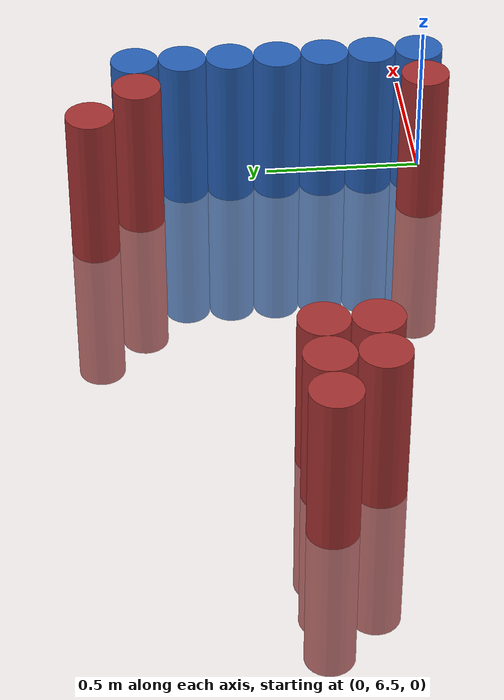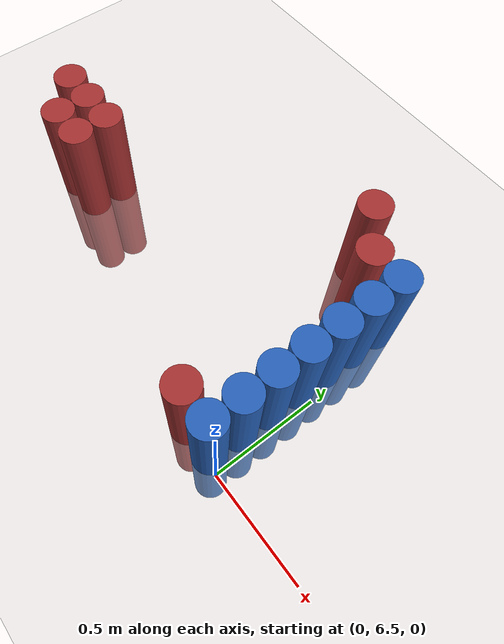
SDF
<sdf version="1.6">
 <world name="default">
  <model name="ground_plane">
   <static>1</static>
   <link name="link">
    <collision name="collision">
     <geometry><plane><normal>0 0 1</normal><size>100 100</size></plane></geometry>
     <surface><friction><ode><mu>100</mu><mu2>50</mu2></ode></friction></surface>
    </collision>
    <visual name="visual">
     <cast_shadows>0</cast_shadows>
     <geometry><plane><normal>0 0 1</normal><size>100 100</size></plane></geometry>
     <material>
      <script><uri>file://media/materials/scripts/gazebo.material</uri><name>Gazebo/Grey</name></script>
     </material>
    </visual>
   </link>
  </model>
  <model name="unit_cylinder_164">
   <static>1</static>
   <pose>-1.725000 6.975000 0.000000 0.000000 0.000000 0.000000</pose>
   <link name="link">
    <inertial>
     <mass>1</mass>
     <inertia><ixx>0.145833</ixx><ixy>0</ixy><ixz>0</ixz><iyy>0.145833</iyy><iyz>0</iyz><izz>0.125</izz></inertia>
    </inertial>
    <collision name="collision">
     <geometry><cylinder><radius>0.075000</radius><length>1</length></cylinder></geometry>
    </collision>
    <visual name="visual">
     <geometry><cylinder><radius>0.075000</radius><length>1</length></cylinder></geometry>
     <material>
      <ambient>0.648000 0.192000 0.192000 1</ambient>
      <diffuse>0.648000 0.192000 0.192000 1</diffuse>
     </material>
     <material>
      <script><name>Gazebo/Grey</name><uri>file://media/materials/scripts/gazebo.material</uri></script>
     </material>
    </visual>
   </link>
  </model>
  <model name="unit_cylinder_165">
   <static>1</static>
   <pose>-1.575000 6.825000 0.000000 0.000000 0.000000 0.000000</pose>
   <link name="link">
    <inertial>
     <mass>1</mass>
     <inertia><ixx>0.145833</ixx><ixy>0</ixy><ixz>0</ixz><iyy>0.145833</iyy><iyz>0</iyz><izz>0.125</izz></inertia>
    </inertial>
    <collision name="collision">
     <geometry><cylinder><radius>0.075000</radius><length>1</length></cylinder></geometry>
    </collision>
    <visual name="visual">
     <geometry><cylinder><radius>0.075000</radius><length>1</length></cylinder></geometry>
     <material>
      <ambient>0.648000 0.192000 0.192000 1</ambient>
      <diffuse>0.648000 0.192000 0.192000 1</diffuse>
     </material>
     <material>
      <script><name>Gazebo/Grey</name><uri>file://media/materials/scripts/gazebo.material</uri></script>
     </material>
    </visual>
   </link>
  </model>
  <model name="unit_cylinder_166">
   <static>1</static>
   <pose>-1.575000 6.975000 0.000000 0.000000 0.000000 0.000000</pose>
   <link name="link">
    <inertial>
     <mass>1</mass>
     <inertia><ixx>0.145833</ixx><ixy>0</ixy><ixz>0</ixz><iyy>0.145833</iyy><iyz>0</iyz><izz>0.125</izz></inertia>
    </inertial>
    <collision name="collision">
     <geometry><cylinder><radius>0.075000</radius><length>1</length></cylinder></geometry>
    </collision>
    <visual name="visual">
     <geometry><cylinder><radius>0.075000</radius><length>1</length></cylinder></geometry>
     <material>
      <ambient>0.648000 0.192000 0.192000 1</ambient>
      <diffuse>0.648000 0.192000 0.192000 1</diffuse>
     </material>
     <material>
      <script><name>Gazebo/Grey</name><uri>file://media/materials/scripts/gazebo.material</uri></script>
     </material>
    </visual>
   </link>
  </model>
  <model name="unit_cylinder_167">
   <static>1</static>
   <pose>-1.425000 6.825000 0.000000 0.000000 0.000000 0.000000</pose>
   <link name="link">
    <inertial>
     <mass>1</mass>
     <inertia><ixx>0.145833</ixx><ixy>0</ixy><ixz>0</ixz><iyy>0.145833</iyy><iyz>0</iyz><izz>0.125</izz></inertia>
    </inertial>
    <collision name="collision">
     <geometry><cylinder><radius>0.075000</radius><length>1</length></cylinder></geometry>
    </collision>
    <visual name="visual">
     <geometry><cylinder><radius>0.075000</radius><length>1</length></cylinder></geometry>
     <material>
      <ambient>0.648000 0.192000 0.192000 1</ambient>
      <diffuse>0.648000 0.192000 0.192000 1</diffuse>
     </material>
     <material>
      <script><name>Gazebo/Grey</name><uri>file://media/materials/scripts/gazebo.material</uri></script>
     </material>
    </visual>
   </link>
  </model>
  <model name="unit_cylinder_168">
   <static>1</static>
   <pose>-1.425000 6.975000 0.000000 0.000000 0.000000 0.000000</pose>
   <link name="link">
    <inertial>
     <mass>1</mass>
     <inertia><ixx>0.145833</ixx><ixy>0</ixy><ixz>0</ixz><iyy>0.145833</iyy><iyz>0</iyz><izz>0.125</izz></inertia>
    </inertial>
    <collision name="collision">
     <geometry><cylinder><radius>0.075000</radius><length>1</length></cylinder></geometry>
    </collision>
    <visual name="visual">
     <geometry><cylinder><radius>0.075000</radius><length>1</length></cylinder></geometry>
     <material>
      <ambient>0.648000 0.192000 0.192000 1</ambient>
      <diffuse>0.648000 0.192000 0.192000 1</diffuse>
     </material>
     <material>
      <script><name>Gazebo/Grey</name><uri>file://media/materials/scripts/gazebo.material</uri></script>
     </material>
    </visual>
   </link>
  </model>
  <model name="unit_cylinder_189">
   <static>1</static>
   <pose>-0.375000 7.575000 0.000000 0.000000 0.000000 0.000000</pose>
   <link name="link">
    <inertial>
     <mass>1</mass>
     <inertia><ixx>0.145833</ixx><ixy>0</ixy><ixz>0</ixz><iyy>0.145833</iyy><iyz>0</iyz><izz>0.125</izz></inertia>
    </inertial>
    <collision name="collision">
     <geometry><cylinder><radius>0.075000</radius><length>1</length></cylinder></geometry>
    </collision>
    <visual name="visual">
     <geometry><cylinder><radius>0.075000</radius><length>1</length></cylinder></geometry>
     <material>
      <ambient>0.648000 0.192000 0.192000 1</ambient>
      <diffuse>0.648000 0.192000 0.192000 1</diffuse>
     </material>
     <material>
      <script><name>Gazebo/Grey</name><uri>file://media/materials/scripts/gazebo.material</uri></script>
     </material>
    </visual>
   </link>
  </model>
  <model name="unit_cylinder_199">
   <static>1</static>
   <pose>-0.225000 6.525000 0.000000 0.000000 0.000000 0.000000</pose>
   <link name="link">
    <inertial>
     <mass>1</mass>
     <inertia><ixx>0.145833</ixx><ixy>0</ixy><ixz>0</ixz><iyy>0.145833</iyy><iyz>0</iyz><izz>0.125</izz></inertia>
    </inertial>
    <collision name="collision">
     <geometry><cylinder><radius>0.075000</radius><length>1</length></cylinder></geometry>
    </collision>
    <visual name="visual">
     <geometry><cylinder><radius>0.075000</radius><length>1</length></cylinder></geometry>
     <material>
      <ambient>0.648000 0.192000 0.192000 1</ambient>
      <diffuse>0.648000 0.192000 0.192000 1</diffuse>
     </material>
     <material>
      <script><name>Gazebo/Grey</name><uri>file://media/materials/scripts/gazebo.material</uri></script>
     </material>
    </visual>
   </link>
  </model>
  <model name="unit_cylinder_200">
   <static>1</static>
   <pose>-0.225000 7.425000 0.000000 0.000000 0.000000 0.000000</pose>
   <link name="link">
    <inertial>
     <mass>1</mass>
     <inertia><ixx>0.145833</ixx><ixy>0</ixy><ixz>0</ixz><iyy>0.145833</iyy><iyz>0</iyz><izz>0.125</izz></inertia>
    </inertial>
    <collision name="collision">
     <geometry><cylinder><radius>0.075000</radius><length>1</length></cylinder></geometry>
    </collision>
    <visual name="visual">
     <geometry><cylinder><radius>0.075000</radius><length>1</length></cylinder></geometry>
     <material>
      <ambient>0.648000 0.192000 0.192000 1</ambient>
      <diffuse>0.648000 0.192000 0.192000 1</diffuse>
     </material>
     <material>
      <script><name>Gazebo/Grey</name><uri>file://media/materials/scripts/gazebo.material</uri></script>
     </material>
    </visual>
   </link>
  </model>
  <model name="unit_cylinder_216">
   <static>1</static>
   <pose>-0.075000 6.525000 0.000000 0.000000 0.000000 0.000000</pose>
   <link name="link">
    <inertial>
     <mass>1</mass>
     <inertia><ixx>0.145833</ixx><ixy>0</ixy><ixz>0</ixz><iyy>0.145833</iyy><iyz>0</iyz><izz>0.125</izz></inertia>
    </inertial>
    <collision name="collision">
     <geometry><cylinder><radius>0.075000</radius><length>1</length></cylinder></geometry>
    </collision>
    <visual name="visual">
     <geometry><cylinder><radius>0.075000</radius><length>1</length></cylinder></geometry>
     <material>
      <ambient>0.152000 0.379000 0.720000 1</ambient>
      <diffuse>0.152000 0.379000 0.720000 1</diffuse>
     </material>
     <material>
      <script><name>Gazebo/Grey</name><uri>file://media/materials/scripts/gazebo.material</uri></script>
     </material>
    </visual>
   </link>
  </model>
  <model name="unit_cylinder_217">
   <static>1</static>
   <pose>-0.075000 6.675000 0.000000 0.000000 0.000000 0.000000</pose>
   <link name="link">
    <inertial>
     <mass>1</mass>
     <inertia><ixx>0.145833</ixx><ixy>0</ixy><ixz>0</ixz><iyy>0.145833</iyy><iyz>0</iyz><izz>0.125</izz></inertia>
    </inertial>
    <collision name="collision">
     <geometry><cylinder><radius>0.075000</radius><length>1</length></cylinder></geometry>
    </collision>
    <visual name="visual">
     <geometry><cylinder><radius>0.075000</radius><length>1</length></cylinder></geometry>
     <material>
      <ambient>0.152000 0.379000 0.720000 1</ambient>
      <diffuse>0.152000 0.379000 0.720000 1</diffuse>
     </material>
     <material>
      <script><name>Gazebo/Grey</name><uri>file://media/materials/scripts/gazebo.material</uri></script>
     </material>
    </visual>
   </link>
  </model>
  <model name="unit_cylinder_218">
   <static>1</static>
   <pose>-0.075000 6.825000 0.000000 0.000000 0.000000 0.000000</pose>
   <link name="link">
    <inertial>
     <mass>1</mass>
     <inertia><ixx>0.145833</ixx><ixy>0</ixy><ixz>0</ixz><iyy>0.145833</iyy><iyz>0</iyz><izz>0.125</izz></inertia>
    </inertial>
    <collision name="collision">
     <geometry><cylinder><radius>0.075000</radius><length>1</length></cylinder></geometry>
    </collision>
    <visual name="visual">
     <geometry><cylinder><radius>0.075000</radius><length>1</length></cylinder></geometry>
     <material>
      <ambient>0.152000 0.379000 0.720000 1</ambient>
      <diffuse>0.152000 0.379000 0.720000 1</diffuse>
     </material>
     <material>
      <script><name>Gazebo/Grey</name><uri>file://media/materials/scripts/gazebo.material</uri></script>
     </material>
    </visual>
   </link>
  </model>
  <model name="unit_cylinder_219">
   <static>1</static>
   <pose>-0.075000 6.975000 0.000000 0.000000 0.000000 0.000000</pose>
   <link name="link">
    <inertial>
     <mass>1</mass>
     <inertia><ixx>0.145833</ixx><ixy>0</ixy><ixz>0</ixz><iyy>0.145833</iyy><iyz>0</iyz><izz>0.125</izz></inertia>
    </inertial>
    <collision name="collision">
     <geometry><cylinder><radius>0.075000</radius><length>1</length></cylinder></geometry>
    </collision>
    <visual name="visual">
     <geometry><cylinder><radius>0.075000</radius><length>1</length></cylinder></geometry>
     <material>
      <ambient>0.152000 0.379000 0.720000 1</ambient>
      <diffuse>0.152000 0.379000 0.720000 1</diffuse>
     </material>
     <material>
      <script><name>Gazebo/Grey</name><uri>file://media/materials/scripts/gazebo.material</uri></script>
     </material>
    </visual>
   </link>
  </model>
  <model name="unit_cylinder_220">
   <static>1</static>
   <pose>-0.075000 7.125000 0.000000 0.000000 0.000000 0.000000</pose>
   <link name="link">
    <inertial>
     <mass>1</mass>
     <inertia><ixx>0.145833</ixx><ixy>0</ixy><ixz>0</ixz><iyy>0.145833</iyy><iyz>0</iyz><izz>0.125</izz></inertia>
    </inertial>
    <collision name="collision">
     <geometry><cylinder><radius>0.075000</radius><length>1</length></cylinder></geometry>
    </collision>
    <visual name="visual">
     <geometry><cylinder><radius>0.075000</radius><length>1</length></cylinder></geometry>
     <material>
      <ambient>0.152000 0.379000 0.720000 1</ambient>
      <diffuse>0.152000 0.379000 0.720000 1</diffuse>
     </material>
     <material>
      <script><name>Gazebo/Grey</name><uri>file://media/materials/scripts/gazebo.material</uri></script>
     </material>
    </visual>
   </link>
  </model>
  <model name="unit_cylinder_221">
   <static>1</static>
   <pose>-0.075000 7.275000 0.000000 0.000000 0.000000 0.000000</pose>
   <link name="link">
    <inertial>
     <mass>1</mass>
     <inertia><ixx>0.145833</ixx><ixy>0</ixy><ixz>0</ixz><iyy>0.145833</iyy><iyz>0</iyz><izz>0.125</izz></inertia>
    </inertial>
    <collision name="collision">
     <geometry><cylinder><radius>0.075000</radius><length>1</length></cylinder></geometry>
    </collision>
    <visual name="visual">
     <geometry><cylinder><radius>0.075000</radius><length>1</length></cylinder></geometry>
     <material>
      <ambient>0.152000 0.379000 0.720000 1</ambient>
      <diffuse>0.152000 0.379000 0.720000 1</diffuse>
     </material>
     <material>
      <script><name>Gazebo/Grey</name><uri>file://media/materials/scripts/gazebo.material</uri></script>
     </material>
    </visual>
   </link>
  </model>
  <model name="unit_cylinder_222">
   <static>1</static>
   <pose>-0.075000 7.425000 0.000000 0.000000 0.000000 0.000000</pose>
   <link name="link">
    <inertial>
     <mass>1</mass>
     <inertia><ixx>0.145833</ixx><ixy>0</ixy><ixz>0</ixz><iyy>0.145833</iyy><iyz>0</iyz><izz>0.125</izz></inertia>
    </inertial>
    <collision name="collision">
     <geometry><cylinder><radius>0.075000</radius><length>1</length></cylinder></geometry>
    </collision>
    <visual name="visual">
     <geometry><cylinder><radius>0.075000</radius><length>1</length></cylinder></geometry>
     <material>
      <ambient>0.152000 0.379000 0.720000 1</ambient>
      <diffuse>0.152000 0.379000 0.720000 1</diffuse>
     </material>
     <material>
      <script><name>Gazebo/Grey</name><uri>file://media/materials/scripts/gazebo.material</uri></script>
     </material>
    </visual>
   </link>
  </model>
 </world>
</sdf>
